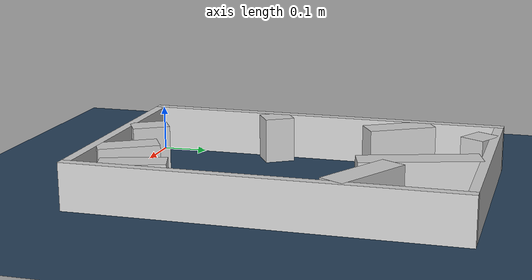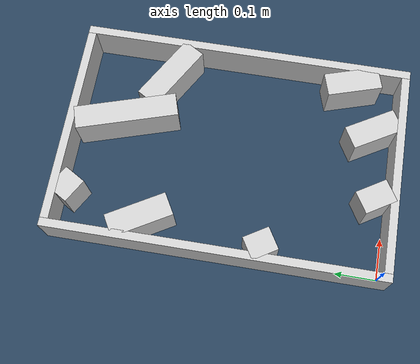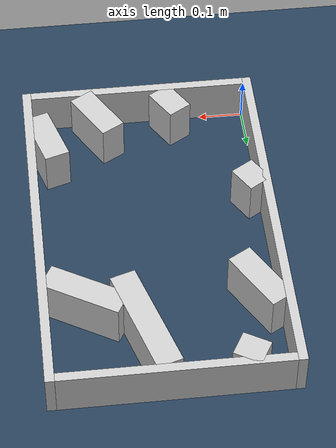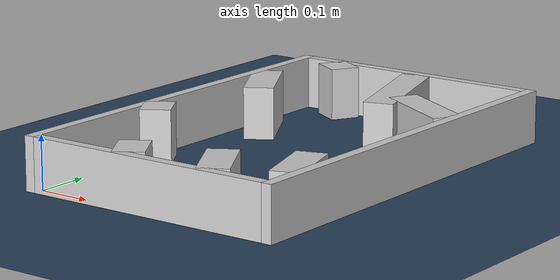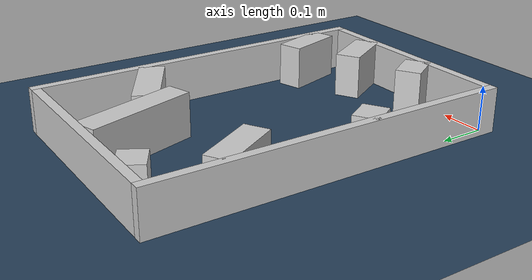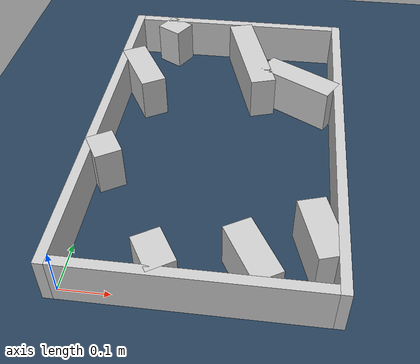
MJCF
<?xml version="1.0" ?>
<mujoco model="generated_real_template">
  <compiler angle="degree"/>
  <option timestep="0.002" integrator="implicitfast" iterations="100" cone="elliptic"/>
  <default>
    <geom density="1"/>
  </default>
  <asset>
    <texture builtin="gradient" height="3072" rgb1="0.3 0.5 0.7" rgb2="0 0 0" type="skybox" width="512"/>
    <texture builtin="checker" height="300" mark="edge" markrgb="0.8 0.8 0.8" name="groundplane" rgb1="0.2 0.3 0.4" rgb2="0.1 0.2 0.3" type="2d" width="300"/>
    <material name="groundplane" reflectance="0.2" texrepeat="5 5" texture="groundplane" texuniform="true"/>
  </asset>
  <worldbody>
    <light dir="0 0 -1" directional="true" pos="0 0 1.5"/>
    <geom name="floor" type="plane" condim="4" friction="0.5 0.005 0.001" material="groundplane" size="0 0 0.05"/>
    <body name="walls">
      <geom name="wall_boundary_left" type="box" condim="4" friction="1.0 0.005 0.0001" rgba="0.8 0.8 0.8 1" pos="-0.010000 0.387500 0.050000" euler="0 0 0.000000" size="0.010000 0.407500 0.050000"/>
      <geom name="wall_boundary_right" type="box" condim="4" friction="1.0 0.005 0.0001" rgba="0.8 0.8 0.8 1" pos="0.500000 0.387500 0.050000" euler="0 0 0.000000" size="0.010000 0.407500 0.050000"/>
      <geom name="wall_boundary_bottom" type="box" condim="4" friction="1.0 0.005 0.0001" rgba="0.8 0.8 0.8 1" pos="0.245000 -0.010000 0.050000" euler="0 0 0.000000" size="0.245000 0.010000 0.050000"/>
      <geom name="wall_boundary_top" type="box" condim="4" friction="1.0 0.005 0.0001" rgba="0.8 0.8 0.8 1" pos="0.245000 0.785000 0.050000" euler="0 0 0.000000" size="0.245000 0.010000 0.050000"/>
      <geom name="wall_inner_1_1" type="box" condim="4" friction="1.0 0.005 0.0001" rgba="0.8 0.8 0.8 1" pos="0.293484 0.655950 0.050000" euler="0 0 -72.541525" size="0.124799 0.028500 0.050000"/>
      <geom name="wall_inner_1_2" type="box" condim="4" friction="1.0 0.005 0.0001" rgba="0.8 0.8 0.8 1" pos="0.462609 0.118195 0.050000" euler="0 0 -72.541525" size="0.067340 0.028500 0.050000"/>
      <geom name="wall_inner_2_1" type="box" condim="4" friction="1.0 0.005 0.0001" rgba="0.8 0.8 0.8 1" pos="0.087579 0.754501 0.050000" euler="0 0 -29.950299" size="0.031655 0.028500 0.050000"/>
      <geom name="wall_inner_2_2" type="box" condim="4" friction="1.0 0.005 0.0001" rgba="0.8 0.8 0.8 1" pos="0.412125 0.567500 0.050000" euler="0 0 -29.950299" size="0.089878 0.028500 0.050000"/>
      <geom name="wall_inner_3_1" type="box" condim="4" friction="1.0 0.005 0.0001" rgba="0.8 0.8 0.8 1" pos="0.343460 0.055417 0.050000" euler="0 0 120.260442" size="0.064159 0.028500 0.050000"/>
      <geom name="wall_inner_3_2" type="box" condim="4" friction="1.0 0.005 0.0001" rgba="0.8 0.8 0.8 1" pos="0.042506 0.571255 0.050000" euler="0 0 120.260442" size="0.075185 0.028500 0.050000"/>
      <geom name="wall_inner_4_1" type="box" condim="4" friction="1.0 0.005 0.0001" rgba="0.8 0.8 0.8 1" pos="0.174860 0.034346 0.050000" euler="0 0 121.552763" size="0.040304 0.028500 0.050000"/>
      <geom name="wall_inner_4_2" type="box" condim="4" friction="1.0 0.005 0.0001" rgba="0.8 0.8 0.8 1" pos="0.021585 0.283952 0.050000" euler="0 0 121.552763" size="0.033055 0.028500 0.050000"/>
    </body>
  </worldbody>
</mujoco>
